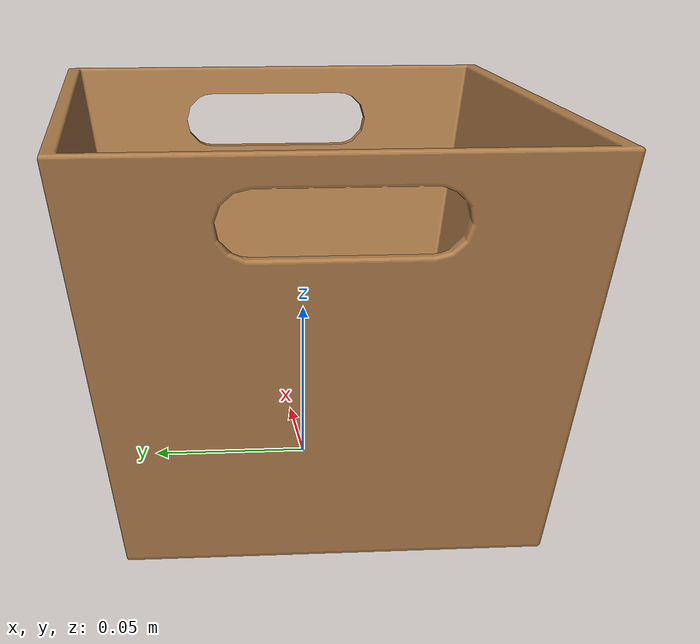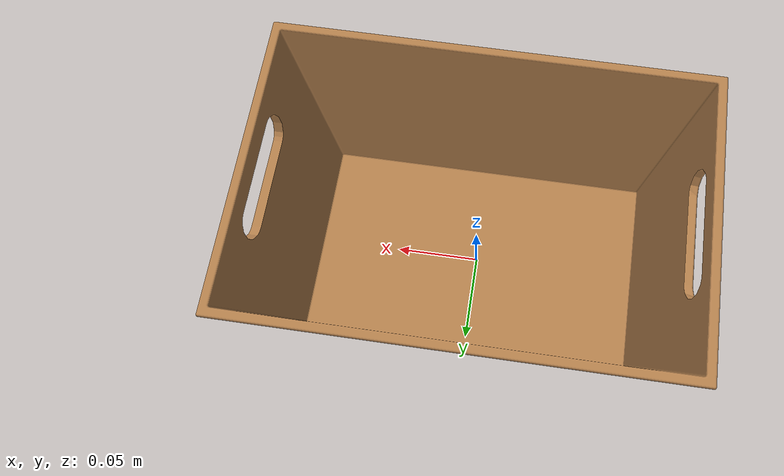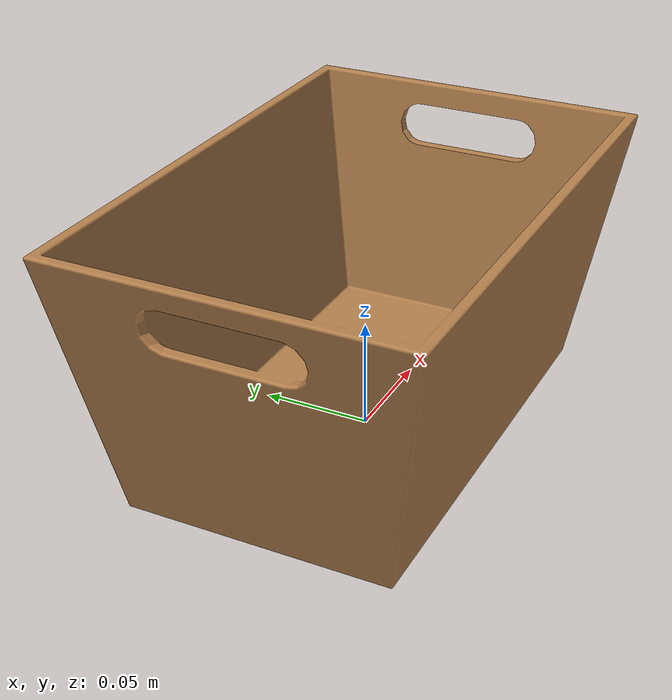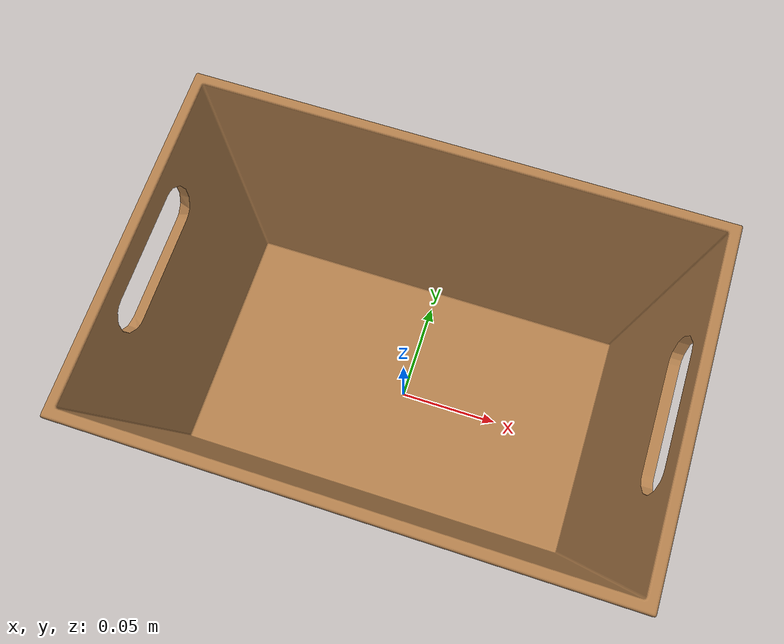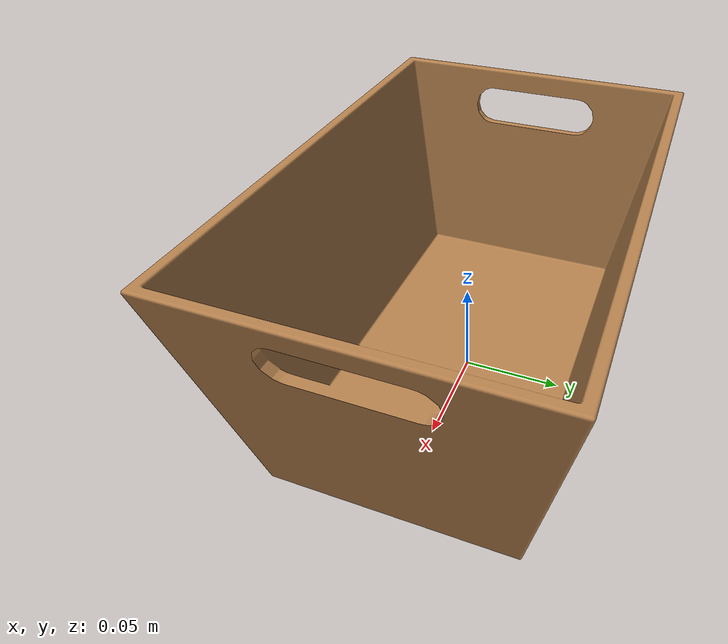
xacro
<?xml version="1.0" encoding="utf-8"?>
<robot name="basket" xmlns:xacro="http://www.ros.org/wiki/xacro">

  <link name="world" />

  <joint name="basket_body_fix_joint" type="fixed">
    <origin xyz = "0 0 0" rpy="0 0 0 "/>
    <parent link = "world"/>
    <child link = "basket_body"/>
  </joint>

  <link name="basket_body">
    <inertial>
      <origin
        xyz="6.847E-06 3.42310000256316E-09 0.041861"
        rpy="0 0 0" />
      <mass
        value="0.62356" />
      <inertia
        ixx="0.0026291"
        ixy="4.57460000000014E-10"
        ixz="-2.3543E-07"
        iyy="0.0043629"
        iyz="3.96220000047294E-10"
        izz="0.0051353" />
    </inertial>
    <visual>
      <origin
        xyz="0 0 0"
        rpy="1.5707963267949 0 0" />
      <geometry>
        <mesh
          filename="package://cai_env/meshes/basket.STL"  />
      </geometry>
    </visual>
    <collision>
      <origin
        xyz="0 0 0"
        rpy="1.5707963267949 0 0" />
      <geometry>
        <mesh
          filename="package://cai_env/meshes/basket.STL" />
      </geometry>
    </collision>
  </link>

  <gazebo reference="basket_body">
   <material>Gazebo/WoodPallet</material>
  </gazebo>

</robot>
